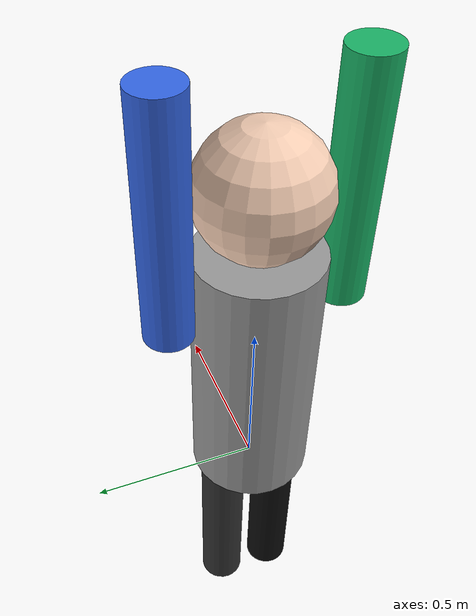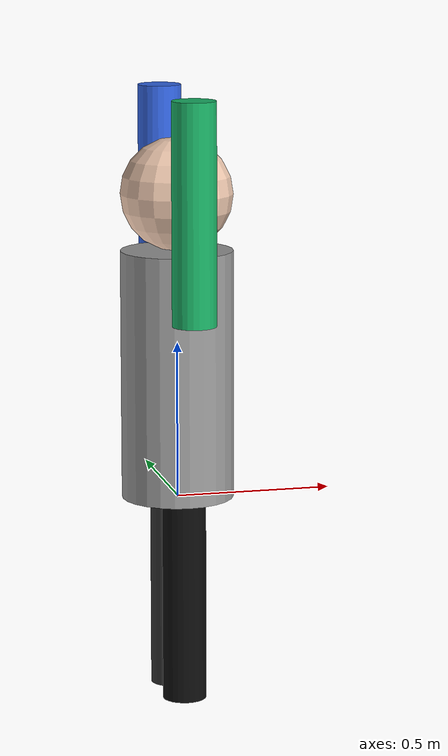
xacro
<?xml version="1.0"?>
<robot xmlns:xacro="http://www.ros.org/wiki/xacro" name="human_body">
  <xacro:property name="torso_height" value="0.8"/>
  <xacro:property name="torso_radius" value="0.18"/>
  <xacro:property name="head_radius" value="0.18"/>
  <xacro:property name="limb_length" value="0.7"/>
  <xacro:property name="limb_radius" value="0.07"/>

  <link name="base_link">
    <visual>
      <origin xyz="0 0 ${torso_height / 2}" rpy="0 0 0"/>
      <geometry>
        <cylinder radius="${torso_radius}" length="${torso_height}"/>
      </geometry>
      <material name="torso_gray">
        <color rgba="0.6 0.6 0.6 1"/>
      </material>
    </visual>
  </link>

  <link name="head_link">
    <visual>
      <origin xyz="0 0 0" rpy="0 0 0"/>
      <geometry>
        <sphere radius="${head_radius}"/>
      </geometry>
      <material name="skin">
        <color rgba="0.95 0.8 0.7 1"/>
      </material>
    </visual>
  </link>

  <joint name="neck_joint" type="fixed">
    <parent link="base_link"/>
    <child link="head_link"/>
    <origin xyz="0 0 ${torso_height + head_radius}" rpy="0 0 0"/>
  </joint>

  <link name="left_arm_link">
    <visual>
      <origin xyz="0 0 ${limb_length / 2}" rpy="0 0 0"/>
      <geometry>
        <cylinder radius="${limb_radius}" length="${limb_length}"/>
      </geometry>
      <material name="arm_blue">
        <color rgba="0.2 0.4 0.9 1"/>
      </material>
    </visual>
  </link>

  <joint name="left_shoulder_joint" type="fixed">
    <parent link="base_link"/>
    <child link="left_arm_link"/>
    <origin xyz="0 ${torso_radius + limb_radius} ${torso_height * 0.75}" rpy="0 0 1.5708"/>
  </joint>

  <link name="right_arm_link">
    <visual>
      <origin xyz="0 0 ${limb_length / 2}" rpy="0 0 0"/>
      <geometry>
        <cylinder radius="${limb_radius}" length="${limb_length}"/>
      </geometry>
      <material name="arm_green">
        <color rgba="0.1 0.7 0.4 1"/>
      </material>
    </visual>
  </link>

  <joint name="right_shoulder_joint" type="fixed">
    <parent link="base_link"/>
    <child link="right_arm_link"/>
    <origin xyz="0 -${torso_radius + limb_radius} ${torso_height * 0.75}" rpy="0 0 -1.5708"/>
  </joint>

  <link name="left_leg_link">
    <visual>
      <origin xyz="0 0 -${limb_length / 2}" rpy="0 0 0"/>
      <geometry>
        <cylinder radius="${limb_radius}" length="${limb_length}"/>
      </geometry>
      <material name="leg_dark">
        <color rgba="0.2 0.2 0.2 1"/>
      </material>
    </visual>
  </link>

  <joint name="left_hip_joint" type="fixed">
    <parent link="base_link"/>
    <child link="left_leg_link"/>
    <origin xyz="0 ${torso_radius / 2} 0.05" rpy="0 0 0"/>
  </joint>

  <link name="right_leg_link">
    <visual>
      <origin xyz="0 0 -${limb_length / 2}" rpy="0 0 0"/>
      <geometry>
        <cylinder radius="${limb_radius}" length="${limb_length}"/>
      </geometry>
      <material name="leg_black">
        <color rgba="0.05 0.05 0.05 1"/>
      </material>
    </visual>
  </link>

  <joint name="right_hip_joint" type="fixed">
    <parent link="base_link"/>
    <child link="right_leg_link"/>
    <origin xyz="0 -${torso_radius / 2} 0.05" rpy="0 0 0"/>
  </joint>
</robot>
